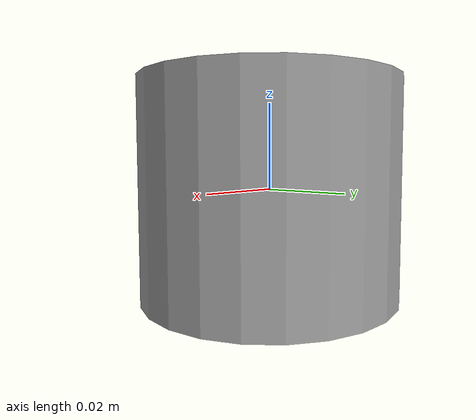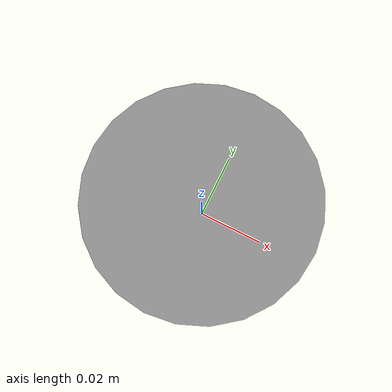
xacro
<?xml version="1.0"?>
<robot name="hokuyo"  xmlns:xacro="http://ros.org/wiki/xacro">

  <xacro:macro name="hokuyo_ust10_mount" params="prefix topic parent_link min_angle:=-2.35619 max_angle:=2.35619 *origin">

    <xacro:macro name="hokuyo_ust10" params="frame:=laser topic:=scan sample_size:=720 update_rate:=50
               min_angle:=${min_angle} max_angle:=${max_angle} min_range:=0.1 max_range:=30.0 robot_namespace:=/">
      <link name="${frame}">
        <inertial>
          <mass value="1.1" />
          <origin xyz="0 0 0" />
          <inertia ixx="${0.0833333 * 1.1 * (0.102*0.102 + 0.152*0.152)}" ixy="0.0" ixz="0.0"
            iyy="${0.0833333 * 1.1 * (0.105*0.105 + 0.152*0.152)}" iyz="0.0"
            izz="${0.0833333 * 1.1 * (0.105*0.105 + 0.102*0.102)}" />
        </inertial>
      </link>

      <gazebo reference="${frame}">
        <turnGravityOff>true</turnGravityOff>
        <sensor type="ray" name="${frame}">
          <pose>0 0 0 0 0 0</pose>
          <visualize>false</visualize>
          <update_rate>${update_rate}</update_rate>
          <ray>
            <scan>
              <horizontal>
                <samples>${sample_size}</samples>
                <resolution>1</resolution>
                <min_angle>${min_angle}</min_angle>
                <max_angle>${max_angle}</max_angle>
              </horizontal>
            </scan>
            <range>
              <min>${min_range}</min>
              <max>${max_range}</max>
              <resolution>0.01</resolution>
            </range>
            <noise>
              <type>gaussian</type>
              <mean>0.0</mean>
              <stddev>0.001</stddev>
            </noise>
          </ray>
          <plugin name="gazebo_ros_laser" filename="libgazebo_ros_ray_sensor.so">
            <ros>
              <namespace>${robot_namespace}</namespace>
              <remapping>~/out:=${topic}</remapping>
            </ros>
            <output_type>sensor_msgs/LaserScan</output_type>
            <frame_name>${frame}</frame_name>
          </plugin>
        </sensor>
      </gazebo>
    </xacro:macro>

    <xacro:hokuyo_ust10 frame="laser" topic="${topic}"/>

    <joint name="laser_joint" type="fixed">
      <!-- This offset is from the base of the bracket to the LIDAR's focal point. -->
      <origin xyz="0 0 0.0474" rpy="0 0 0" />
      <parent link="base_link" />
      <child link="laser" />
    </joint>

    <gazebo reference="laser_mount">
    </gazebo>

  </xacro:macro>

 <link name="base_link">
    <visual>
      <geometry>
        <cylinder length="0.05" radius="0.03"/>
      </geometry>
      <material name="gray">
        <color rgba="0.6 0.6 0.6 1.0"/>
      </material>
    </visual>

  </link>

    <!-- BASE_FOOTPRINT LINK -->

    <joint name="base_footprint_joint" type="fixed">
        <parent link="base_link"/>
        <child link="base_footprint"/>
        <origin xyz="0 0 0" rpy="0 0 0"/>
    </joint>

    <link name="base_footprint">
    </link>

    <xacro:hokuyo_ust10_mount prefix="" topic="scan" parent_link="base_link" min_angle="-2.35619" max_angle="2.35619">
  <origin xyz="0 0 0.1" rpy="0 0 0" />
  </xacro:hokuyo_ust10_mount>

</robot>
